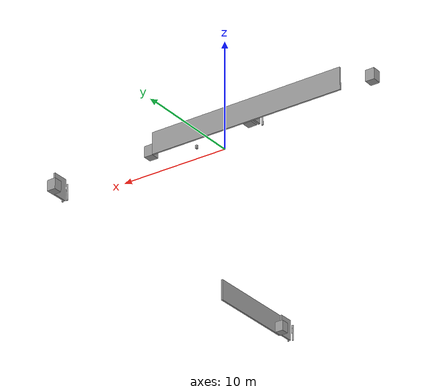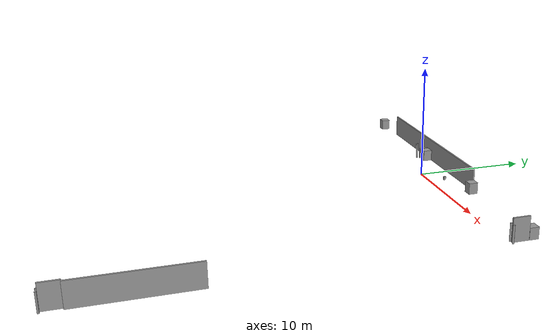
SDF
<?xml version='1.0'?>
<sdf version='1.6'>
  <model name='unit_box_map13'>
    <link name='link_1'>
      <pose frame=''>5.64225 2.27249 0.5 0 -0 0</pose>
      <inertial>
        <mass>1</mass>
        <inertia>
          <ixx>0.166667</ixx>
          <ixy>0</ixy>
          <ixz>0</ixz>
          <iyy>0.166667</iyy>
          <iyz>0</iyz>
          <izz>0.166667</izz>
        </inertia>
        <pose frame=''>0 0 0 0 -0 0</pose>
      </inertial>
      <self_collide>0</self_collide>
      <kinematic>0</kinematic>
      <visual name='visual'>
        <pose frame=''>0 0 0 0 -0 0</pose>
        <geometry>
          <box>
            <size>0.8 0.8 1</size>
          </box>
        </geometry>
        <material>
          <lighting>1</lighting>
          <script>
            <uri>file://media/materials/scripts/gazebo.material</uri>
            <name>Gazebo/Grey</name>
          </script>
          <ambient>0.3 0.3 0.3 1</ambient>
          <diffuse>0.7 0.7 0.7 1</diffuse>
          <specular>0.01 0.01 0.01 1</specular>
          <emissive>0 0 0 1</emissive>
          <shader type='vertex'>
            <normal_map>__default__</normal_map>
          </shader>
        </material>
        <cast_shadows>1</cast_shadows>
        <transparency>0</transparency>
      </visual>
      <collision name='collision'>
        <laser_retro>0</laser_retro>
        <max_contacts>10</max_contacts>
        <pose frame=''>0 0 0 0 -0 0</pose>
        <geometry>
          <box>
            <size>0.8 0.8 1</size>
          </box>
        </geometry>
        <surface>
          <friction>
            <ode>
              <mu>1</mu>
              <mu2>1</mu2>
              <fdir1>0 0 0</fdir1>
              <slip1>0</slip1>
              <slip2>0</slip2>
            </ode>
            <torsional>
              <coefficient>1</coefficient>
              <patch_radius>0</patch_radius>
              <surface_radius>0</surface_radius>
              <use_patch_radius>1</use_patch_radius>
              <ode>
                <slip>0</slip>
              </ode>
            </torsional>
          </friction>
          <bounce>
            <restitution_coefficient>0</restitution_coefficient>
            <threshold>1e+06</threshold>
          </bounce>
          <contact>
            <collide_without_contact>0</collide_without_contact>
            <collide_without_contact_bitmask>1</collide_without_contact_bitmask>
            <collide_bitmask>1</collide_bitmask>
            <ode>
              <soft_cfm>0</soft_cfm>
              <soft_erp>0.2</soft_erp>
              <kp>1e+13</kp>
              <kd>1</kd>
              <max_vel>0.01</max_vel>
              <min_depth>0</min_depth>
            </ode>
            <bullet>
              <split_impulse>1</split_impulse>
              <split_impulse_penetration_threshold>-0.01</split_impulse_penetration_threshold>
              <soft_cfm>0</soft_cfm>
              <soft_erp>0.2</soft_erp>
              <kp>1e+13</kp>
              <kd>1</kd>
            </bullet>
          </contact>
        </surface>
      </collision>
    </link>
    <link name='link_1_clone'>
      <pose frame=''>-3.92858 2.1759 0.5 0 -0 0</pose>
      <inertial>
        <mass>1</mass>
        <inertia>
          <ixx>0.166667</ixx>
          <ixy>0</ixy>
          <ixz>0</ixz>
          <iyy>0.166667</iyy>
          <iyz>0</iyz>
          <izz>0.166667</izz>
        </inertia>
        <pose frame=''>0 0 0 0 -0 0</pose>
      </inertial>
      <self_collide>0</self_collide>
      <kinematic>0</kinematic>
      <visual name='visual'>
        <pose frame=''>0 0 0 0 -0 0</pose>
        <geometry>
          <box>
            <size>0.8 0.8 1</size>
          </box>
        </geometry>
        <material>
          <lighting>1</lighting>
          <script>
            <uri>file://media/materials/scripts/gazebo.material</uri>
            <name>Gazebo/Grey</name>
          </script>
          <ambient>0.3 0.3 0.3 1</ambient>
          <diffuse>0.7 0.7 0.7 1</diffuse>
          <specular>0.01 0.01 0.01 1</specular>
          <emissive>0 0 0 1</emissive>
          <shader type='vertex'>
            <normal_map>__default__</normal_map>
          </shader>
        </material>
        <cast_shadows>1</cast_shadows>
        <transparency>0</transparency>
      </visual>
      <collision name='collision'>
        <laser_retro>0</laser_retro>
        <max_contacts>10</max_contacts>
        <pose frame=''>0 0 0 0 -0 0</pose>
        <geometry>
          <box>
            <size>0.8 0.8 1</size>
          </box>
        </geometry>
        <surface>
          <friction>
            <ode>
              <mu>1</mu>
              <mu2>1</mu2>
              <fdir1>0 0 0</fdir1>
              <slip1>0</slip1>
              <slip2>0</slip2>
            </ode>
            <torsional>
              <coefficient>1</coefficient>
              <patch_radius>0</patch_radius>
              <surface_radius>0</surface_radius>
              <use_patch_radius>1</use_patch_radius>
              <ode>
                <slip>0</slip>
              </ode>
            </torsional>
          </friction>
          <bounce>
            <restitution_coefficient>0</restitution_coefficient>
            <threshold>1e+06</threshold>
          </bounce>
          <contact>
            <collide_without_contact>0</collide_without_contact>
            <collide_without_contact_bitmask>1</collide_without_contact_bitmask>
            <collide_bitmask>1</collide_bitmask>
            <ode>
              <soft_cfm>0</soft_cfm>
              <soft_erp>0.2</soft_erp>
              <kp>1e+13</kp>
              <kd>1</kd>
              <max_vel>0.01</max_vel>
              <min_depth>0</min_depth>
            </ode>
            <bullet>
              <split_impulse>1</split_impulse>
              <split_impulse_penetration_threshold>-0.01</split_impulse_penetration_threshold>
              <soft_cfm>0</soft_cfm>
              <soft_erp>0.2</soft_erp>
              <kp>1e+13</kp>
              <kd>1</kd>
            </bullet>
          </contact>
        </surface>
      </collision>
    </link>
    <link name='link_1_clone_0'>
      <pose frame=''>15.5289 -30.814 0.5 0 -0 0</pose>
      <inertial>
        <mass>1</mass>
        <inertia>
          <ixx>0.166667</ixx>
          <ixy>0</ixy>
          <ixz>0</ixz>
          <iyy>0.166667</iyy>
          <iyz>0</iyz>
          <izz>0.166667</izz>
        </inertia>
        <pose frame=''>0 0 0 0 -0 0</pose>
      </inertial>
      <self_collide>0</self_collide>
      <kinematic>0</kinematic>
      <visual name='visual'>
        <pose frame=''>0 0 0 0 -0 0</pose>
        <geometry>
          <box>
            <size>0.8 0.8 1</size>
          </box>
        </geometry>
        <material>
          <lighting>1</lighting>
          <script>
            <uri>file://media/materials/scripts/gazebo.material</uri>
            <name>Gazebo/Grey</name>
          </script>
          <ambient>0.3 0.3 0.3 1</ambient>
          <diffuse>0.7 0.7 0.7 1</diffuse>
          <specular>0.01 0.01 0.01 1</specular>
          <emissive>0 0 0 1</emissive>
          <shader type='vertex'>
            <normal_map>__default__</normal_map>
          </shader>
        </material>
        <cast_shadows>1</cast_shadows>
        <transparency>0</transparency>
      </visual>
      <collision name='collision'>
        <laser_retro>0</laser_retro>
        <max_contacts>10</max_contacts>
        <pose frame=''>0 0 0 0 -0 0</pose>
        <geometry>
          <box>
            <size>0.8 0.8 1</size>
          </box>
        </geometry>
        <surface>
          <friction>
            <ode>
              <mu>1</mu>
              <mu2>1</mu2>
              <fdir1>0 0 0</fdir1>
              <slip1>0</slip1>
              <slip2>0</slip2>
            </ode>
            <torsional>
              <coefficient>1</coefficient>
              <patch_radius>0</patch_radius>
              <surface_radius>0</surface_radius>
              <use_patch_radius>1</use_patch_radius>
              <ode>
                <slip>0</slip>
              </ode>
            </torsional>
          </friction>
          <bounce>
            <restitution_coefficient>0</restitution_coefficient>
            <threshold>1e+06</threshold>
          </bounce>
          <contact>
            <collide_without_contact>0</collide_without_contact>
            <collide_without_contact_bitmask>1</collide_without_contact_bitmask>
            <collide_bitmask>1</collide_bitmask>
            <ode>
              <soft_cfm>0</soft_cfm>
              <soft_erp>0.2</soft_erp>
              <kp>1e+13</kp>
              <kd>1</kd>
              <max_vel>0.01</max_vel>
              <min_depth>0</min_depth>
            </ode>
            <bullet>
              <split_impulse>1</split_impulse>
              <split_impulse_penetration_threshold>-0.01</split_impulse_penetration_threshold>
              <soft_cfm>0</soft_cfm>
              <soft_erp>0.2</soft_erp>
              <kp>1e+13</kp>
              <kd>1</kd>
            </bullet>
          </contact>
        </surface>
      </collision>
    </link>
    <link name='link_1_clone_0_clone'>
      <pose frame=''>15.5381 2.27815 0.5 0 -0 0</pose>
      <inertial>
        <mass>1</mass>
        <inertia>
          <ixx>0.166667</ixx>
          <ixy>0</ixy>
          <ixz>0</ixz>
          <iyy>0.166667</iyy>
          <iyz>0</iyz>
          <izz>0.166667</izz>
        </inertia>
        <pose frame=''>0 0 0 0 -0 0</pose>
      </inertial>
      <self_collide>0</self_collide>
      <kinematic>0</kinematic>
      <visual name='visual'>
        <pose frame=''>0 0 0 0 -0 0</pose>
        <geometry>
          <box>
            <size>0.8 0.8 1</size>
          </box>
        </geometry>
        <material>
          <lighting>1</lighting>
          <script>
            <uri>file://media/materials/scripts/gazebo.material</uri>
            <name>Gazebo/Grey</name>
          </script>
          <ambient>0.3 0.3 0.3 1</ambient>
          <diffuse>0.7 0.7 0.7 1</diffuse>
          <specular>0.01 0.01 0.01 1</specular>
          <emissive>0 0 0 1</emissive>
          <shader type='vertex'>
            <normal_map>__default__</normal_map>
          </shader>
        </material>
        <cast_shadows>1</cast_shadows>
        <transparency>0</transparency>
      </visual>
      <collision name='collision'>
        <laser_retro>0</laser_retro>
        <max_contacts>10</max_contacts>
        <pose frame=''>0 0 0 0 -0 0</pose>
        <geometry>
          <box>
            <size>0.8 0.8 1</size>
          </box>
        </geometry>
        <surface>
          <friction>
            <ode>
              <mu>1</mu>
              <mu2>1</mu2>
              <fdir1>0 0 0</fdir1>
              <slip1>0</slip1>
              <slip2>0</slip2>
            </ode>
            <torsional>
              <coefficient>1</coefficient>
              <patch_radius>0</patch_radius>
              <surface_radius>0</surface_radius>
              <use_patch_radius>1</use_patch_radius>
              <ode>
                <slip>0</slip>
              </ode>
            </torsional>
          </friction>
          <bounce>
            <restitution_coefficient>0</restitution_coefficient>
            <threshold>1e+06</threshold>
          </bounce>
          <contact>
            <collide_without_contact>0</collide_without_contact>
            <collide_without_contact_bitmask>1</collide_without_contact_bitmask>
            <collide_bitmask>1</collide_bitmask>
            <ode>
              <soft_cfm>0</soft_cfm>
              <soft_erp>0.2</soft_erp>
              <kp>1e+13</kp>
              <kd>1</kd>
              <max_vel>0.01</max_vel>
              <min_depth>0</min_depth>
            </ode>
            <bullet>
              <split_impulse>1</split_impulse>
              <split_impulse_penetration_threshold>-0.01</split_impulse_penetration_threshold>
              <soft_cfm>0</soft_cfm>
              <soft_erp>0.2</soft_erp>
              <kp>1e+13</kp>
              <kd>1</kd>
            </bullet>
          </contact>
        </surface>
      </collision>
    </link>
    <link name='link_1_clone_clone'>
      <pose frame=''>-4.56641 2.17851 0.5 0 -0 0</pose>
      <inertial>
        <mass>0.216254</mass>
        <inertia>
          <ixx>0.0360423</ixx>
          <ixy>0</ixy>
          <ixz>0</ixz>
          <iyy>0.0188639</iyy>
          <iyz>0</iyz>
          <izz>0.0188639</izz>
        </inertia>
        <pose frame=''>0 0 0 0 -0 0</pose>
      </inertial>
      <self_collide>0</self_collide>
      <kinematic>0</kinematic>
      <visual name='visual'>
        <pose frame=''>0 0 0 0 -0 0</pose>
        <geometry>
          <box>
            <size>0.173004 0.8 1</size>
          </box>
        </geometry>
        <material>
          <lighting>1</lighting>
          <script>
            <uri>file://media/materials/scripts/gazebo.material</uri>
            <name>Gazebo/Grey</name>
          </script>
          <ambient>0.3 0.3 0.3 1</ambient>
          <diffuse>0.7 0.7 0.7 1</diffuse>
          <specular>0.01 0.01 0.01 1</specular>
          <emissive>0 0 0 1</emissive>
          <shader type='vertex'>
            <normal_map>__default__</normal_map>
          </shader>
        </material>
        <cast_shadows>1</cast_shadows>
        <transparency>0</transparency>
      </visual>
      <collision name='collision'>
        <laser_retro>0</laser_retro>
        <max_contacts>10</max_contacts>
        <pose frame=''>0 0 0 0 -0 0</pose>
        <geometry>
          <box>
            <size>0.173004 0.8 1</size>
          </box>
        </geometry>
        <surface>
          <friction>
            <ode>
              <mu>1</mu>
              <mu2>1</mu2>
              <fdir1>0 0 0</fdir1>
              <slip1>0</slip1>
              <slip2>0</slip2>
            </ode>
            <torsional>
              <coefficient>1</coefficient>
              <patch_radius>0</patch_radius>
              <surface_radius>0</surface_radius>
              <use_patch_radius>1</use_patch_radius>
              <ode>
                <slip>0</slip>
              </ode>
            </torsional>
          </friction>
          <bounce>
            <restitution_coefficient>0</restitution_coefficient>
            <threshold>1e+06</threshold>
          </bounce>
          <contact>
            <collide_without_contact>0</collide_without_contact>
            <collide_without_contact_bitmask>1</collide_without_contact_bitmask>
            <collide_bitmask>1</collide_bitmask>
            <ode>
              <soft_cfm>0</soft_cfm>
              <soft_erp>0.2</soft_erp>
              <kp>1e+13</kp>
              <kd>1</kd>
              <max_vel>0.01</max_vel>
              <min_depth>0</min_depth>
            </ode>
            <bullet>
              <split_impulse>1</split_impulse>
              <split_impulse_penetration_threshold>-0.01</split_impulse_penetration_threshold>
              <soft_cfm>0</soft_cfm>
              <soft_erp>0.2</soft_erp>
              <kp>1e+13</kp>
              <kd>1</kd>
            </bullet>
          </contact>
        </surface>
      </collision>
    </link>
    <link name='link_1_clone_clone_0'>
      <pose frame=''>-15.389 2.17694 0.5 0 -0 0</pose>
      <inertial>
        <mass>1</mass>
        <inertia>
          <ixx>0.166667</ixx>
          <ixy>0</ixy>
          <ixz>0</ixz>
          <iyy>0.166667</iyy>
          <iyz>0</iyz>
          <izz>0.166667</izz>
        </inertia>
        <pose frame=''>0 0 0 0 -0 0</pose>
      </inertial>
      <self_collide>0</self_collide>
      <kinematic>0</kinematic>
      <visual name='visual'>
        <pose frame=''>0 0 0 0 -0 0</pose>
        <geometry>
          <box>
            <size>0.8 0.8 1</size>
          </box>
        </geometry>
        <material>
          <lighting>1</lighting>
          <script>
            <uri>file://media/materials/scripts/gazebo.material</uri>
            <name>Gazebo/Grey</name>
          </script>
          <ambient>0.3 0.3 0.3 1</ambient>
          <diffuse>0.7 0.7 0.7 1</diffuse>
          <specular>0.01 0.01 0.01 1</specular>
          <emissive>0 0 0 1</emissive>
          <shader type='vertex'>
            <normal_map>__default__</normal_map>
          </shader>
        </material>
        <cast_shadows>1</cast_shadows>
        <transparency>0</transparency>
      </visual>
      <collision name='collision'>
        <laser_retro>0</laser_retro>
        <max_contacts>10</max_contacts>
        <pose frame=''>0 0 0 0 -0 0</pose>
        <geometry>
          <box>
            <size>0.8 0.8 1</size>
          </box>
        </geometry>
        <surface>
          <friction>
            <ode>
              <mu>1</mu>
              <mu2>1</mu2>
              <fdir1>0 0 0</fdir1>
              <slip1>0</slip1>
              <slip2>0</slip2>
            </ode>
            <torsional>
              <coefficient>1</coefficient>
              <patch_radius>0</patch_radius>
              <surface_radius>0</surface_radius>
              <use_patch_radius>1</use_patch_radius>
              <ode>
                <slip>0</slip>
              </ode>
            </torsional>
          </friction>
          <bounce>
            <restitution_coefficient>0</restitution_coefficient>
            <threshold>1e+06</threshold>
          </bounce>
          <contact>
            <collide_without_contact>0</collide_without_contact>
            <collide_without_contact_bitmask>1</collide_without_contact_bitmask>
            <collide_bitmask>1</collide_bitmask>
            <ode>
              <soft_cfm>0</soft_cfm>
              <soft_erp>0.2</soft_erp>
              <kp>1e+13</kp>
              <kd>1</kd>
              <max_vel>0.01</max_vel>
              <min_depth>0</min_depth>
            </ode>
            <bullet>
              <split_impulse>1</split_impulse>
              <split_impulse_penetration_threshold>-0.01</split_impulse_penetration_threshold>
              <soft_cfm>0</soft_cfm>
              <soft_erp>0.2</soft_erp>
              <kp>1e+13</kp>
              <kd>1</kd>
            </bullet>
          </contact>
        </surface>
      </collision>
    </link>
    <link name='link_2'>
      <pose frame=''>-4.67409 1.51565 0.7539 0 -0 0</pose>
      <inertial>
        <mass>1</mass>
        <inertia>
          <ixx>0.145833</ixx>
          <ixy>0</ixy>
          <ixz>0</ixz>
          <iyy>0.145833</iyy>
          <iyz>0</iyz>
          <izz>0.125</izz>
        </inertia>
        <pose frame=''>0 0 0 0 -0 0</pose>
      </inertial>
      <self_collide>0</self_collide>
      <kinematic>0</kinematic>
      <visual name='visual'>
        <pose frame=''>0 0 0 0 -0 0</pose>
        <geometry>
          <cylinder>
            <radius>0.075</radius>
            <length>1.5</length>
          </cylinder>
        </geometry>
        <material>
          <lighting>1</lighting>
          <script>
            <uri>file://media/materials/scripts/gazebo.material</uri>
            <name>Gazebo/Grey</name>
          </script>
          <ambient>0.3 0.3 0.3 1</ambient>
          <diffuse>0.7 0.7 0.7 1</diffuse>
          <specular>0.01 0.01 0.01 1</specular>
          <emissive>0 0 0 1</emissive>
          <shader type='vertex'>
            <normal_map>__default__</normal_map>
          </shader>
        </material>
        <cast_shadows>1</cast_shadows>
        <transparency>0</transparency>
      </visual>
      <collision name='collision'>
        <laser_retro>0</laser_retro>
        <max_contacts>10</max_contacts>
        <pose frame=''>0 0 0 0 -0 0</pose>
        <geometry>
          <cylinder>
            <radius>0.075</radius>
            <length>1.5</length>
          </cylinder>
        </geometry>
        <surface>
          <friction>
            <ode>
              <mu>1</mu>
              <mu2>1</mu2>
              <fdir1>0 0 0</fdir1>
              <slip1>0</slip1>
              <slip2>0</slip2>
            </ode>
            <torsional>
              <coefficient>1</coefficient>
              <patch_radius>0</patch_radius>
              <surface_radius>0</surface_radius>
              <use_patch_radius>1</use_patch_radius>
              <ode>
                <slip>0</slip>
              </ode>
            </torsional>
          </friction>
          <bounce>
            <restitution_coefficient>0</restitution_coefficient>
            <threshold>1e+06</threshold>
          </bounce>
          <contact>
            <collide_without_contact>0</collide_without_contact>
            <collide_without_contact_bitmask>1</collide_without_contact_bitmask>
            <collide_bitmask>1</collide_bitmask>
            <ode>
              <soft_cfm>0</soft_cfm>
              <soft_erp>0.2</soft_erp>
              <kp>1e+13</kp>
              <kd>1</kd>
              <max_vel>0.01</max_vel>
              <min_depth>0</min_depth>
            </ode>
            <bullet>
              <split_impulse>1</split_impulse>
              <split_impulse_penetration_threshold>-0.01</split_impulse_penetration_threshold>
              <soft_cfm>0</soft_cfm>
              <soft_erp>0.2</soft_erp>
              <kp>1e+13</kp>
              <kd>1</kd>
            </bullet>
          </contact>
        </surface>
      </collision>
    </link>
    <link name='link_2_clone'>
      <pose frame=''>16.0775 -32.7288 0.7539 0 -0 0</pose>
      <inertial>
        <mass>1</mass>
        <inertia>
          <ixx>0.145833</ixx>
          <ixy>0</ixy>
          <ixz>0</ixz>
          <iyy>0.145833</iyy>
          <iyz>0</iyz>
          <izz>0.125</izz>
        </inertia>
        <pose frame=''>0 0 0 0 -0 0</pose>
      </inertial>
      <self_collide>0</self_collide>
      <kinematic>0</kinematic>
      <visual name='visual'>
        <pose frame=''>0 0 0 0 -0 0</pose>
        <geometry>
          <cylinder>
            <radius>0.075</radius>
            <length>1.5</length>
          </cylinder>
        </geometry>
        <material>
          <lighting>1</lighting>
          <script>
            <uri>file://media/materials/scripts/gazebo.material</uri>
            <name>Gazebo/Grey</name>
          </script>
          <ambient>0.3 0.3 0.3 1</ambient>
          <diffuse>0.7 0.7 0.7 1</diffuse>
          <specular>0.01 0.01 0.01 1</specular>
          <emissive>0 0 0 1</emissive>
          <shader type='vertex'>
            <normal_map>__default__</normal_map>
          </shader>
        </material>
        <cast_shadows>1</cast_shadows>
        <transparency>0</transparency>
      </visual>
      <collision name='collision'>
        <laser_retro>0</laser_retro>
        <max_contacts>10</max_contacts>
        <pose frame=''>0 0 0 0 -0 0</pose>
        <geometry>
          <cylinder>
            <radius>0.075</radius>
            <length>1.5</length>
          </cylinder>
        </geometry>
        <surface>
          <friction>
            <ode>
              <mu>1</mu>
              <mu2>1</mu2>
              <fdir1>0 0 0</fdir1>
              <slip1>0</slip1>
              <slip2>0</slip2>
            </ode>
            <torsional>
              <coefficient>1</coefficient>
              <patch_radius>0</patch_radius>
              <surface_radius>0</surface_radius>
              <use_patch_radius>1</use_patch_radius>
              <ode>
                <slip>0</slip>
              </ode>
            </torsional>
          </friction>
          <bounce>
            <restitution_coefficient>0</restitution_coefficient>
            <threshold>1e+06</threshold>
          </bounce>
          <contact>
            <collide_without_contact>0</collide_without_contact>
            <collide_without_contact_bitmask>1</collide_without_contact_bitmask>
            <collide_bitmask>1</collide_bitmask>
            <ode>
              <soft_cfm>0</soft_cfm>
              <soft_erp>0.2</soft_erp>
              <kp>1e+13</kp>
              <kd>1</kd>
              <max_vel>0.01</max_vel>
              <min_depth>0</min_depth>
            </ode>
            <bullet>
              <split_impulse>1</split_impulse>
              <split_impulse_penetration_threshold>-0.01</split_impulse_penetration_threshold>
              <soft_cfm>0</soft_cfm>
              <soft_erp>0.2</soft_erp>
              <kp>1e+13</kp>
              <kd>1</kd>
            </bullet>
          </contact>
        </surface>
      </collision>
    </link>
    <link name='link_2_clone_0'>
      <pose frame=''>15.6074 -32.7433 0.7539 0 -0 0</pose>
      <inertial>
        <mass>1</mass>
        <inertia>
          <ixx>0.145833</ixx>
          <ixy>0</ixy>
          <ixz>0</ixz>
          <iyy>0.145833</iyy>
          <iyz>0</iyz>
          <izz>0.125</izz>
        </inertia>
        <pose frame=''>0 0 0 0 -0 0</pose>
      </inertial>
      <self_collide>0</self_collide>
      <kinematic>0</kinematic>
      <visual name='visual'>
        <pose frame=''>0 0 0 0 -0 0</pose>
        <geometry>
          <cylinder>
            <radius>0.075</radius>
            <length>1.5</length>
          </cylinder>
        </geometry>
        <material>
          <lighting>1</lighting>
          <script>
            <uri>file://media/materials/scripts/gazebo.material</uri>
            <name>Gazebo/Grey</name>
          </script>
          <ambient>0.3 0.3 0.3 1</ambient>
          <diffuse>0.7 0.7 0.7 1</diffuse>
          <specular>0.01 0.01 0.01 1</specular>
          <emissive>0 0 0 1</emissive>
          <shader type='vertex'>
            <normal_map>__default__</normal_map>
          </shader>
        </material>
        <cast_shadows>1</cast_shadows>
        <transparency>0</transparency>
      </visual>
      <collision name='collision'>
        <laser_retro>0</laser_retro>
        <max_contacts>10</max_contacts>
        <pose frame=''>0 0 0 0 -0 0</pose>
        <geometry>
          <cylinder>
            <radius>0.075</radius>
            <length>1.5</length>
          </cylinder>
        </geometry>
        <surface>
          <friction>
            <ode>
              <mu>1</mu>
              <mu2>1</mu2>
              <fdir1>0 0 0</fdir1>
              <slip1>0</slip1>
              <slip2>0</slip2>
            </ode>
            <torsional>
              <coefficient>1</coefficient>
              <patch_radius>0</patch_radius>
              <surface_radius>0</surface_radius>
              <use_patch_radius>1</use_patch_radius>
              <ode>
                <slip>0</slip>
              </ode>
            </torsional>
          </friction>
          <bounce>
            <restitution_coefficient>0</restitution_coefficient>
            <threshold>1e+06</threshold>
          </bounce>
          <contact>
            <collide_without_contact>0</collide_without_contact>
            <collide_without_contact_bitmask>1</collide_without_contact_bitmask>
            <collide_bitmask>1</collide_bitmask>
            <ode>
              <soft_cfm>0</soft_cfm>
              <soft_erp>0.2</soft_erp>
              <kp>1e+13</kp>
              <kd>1</kd>
              <max_vel>0.01</max_vel>
              <min_depth>0</min_depth>
            </ode>
            <bullet>
              <split_impulse>1</split_impulse>
              <split_impulse_penetration_threshold>-0.01</split_impulse_penetration_threshold>
              <soft_cfm>0</soft_cfm>
              <soft_erp>0.2</soft_erp>
              <kp>1e+13</kp>
              <kd>1</kd>
            </bullet>
          </contact>
        </surface>
      </collision>
    </link>
    <link name='link_2_clone_clone'>
      <pose frame=''>16.0812 0.409793 0.7539 0 -0 0</pose>
      <inertial>
        <mass>1</mass>
        <inertia>
          <ixx>0.145833</ixx>
          <ixy>0</ixy>
          <ixz>0</ixz>
          <iyy>0.145833</iyy>
          <iyz>0</iyz>
          <izz>0.125</izz>
        </inertia>
        <pose frame=''>0 0 0 0 -0 0</pose>
      </inertial>
      <self_collide>0</self_collide>
      <kinematic>0</kinematic>
      <visual name='visual'>
        <pose frame=''>0 0 0 0 -0 0</pose>
        <geometry>
          <cylinder>
            <radius>0.075</radius>
            <length>1.5</length>
          </cylinder>
        </geometry>
        <material>
          <lighting>1</lighting>
          <script>
            <uri>file://media/materials/scripts/gazebo.material</uri>
            <name>Gazebo/Grey</name>
          </script>
          <ambient>0.3 0.3 0.3 1</ambient>
          <diffuse>0.7 0.7 0.7 1</diffuse>
          <specular>0.01 0.01 0.01 1</specular>
          <emissive>0 0 0 1</emissive>
          <shader type='vertex'>
            <normal_map>__default__</normal_map>
          </shader>
        </material>
        <cast_shadows>1</cast_shadows>
        <transparency>0</transparency>
      </visual>
      <collision name='collision'>
        <laser_retro>0</laser_retro>
        <max_contacts>10</max_contacts>
        <pose frame=''>0 0 0 0 -0 0</pose>
        <geometry>
          <cylinder>
            <radius>0.075</radius>
            <length>1.5</length>
          </cylinder>
        </geometry>
        <surface>
          <friction>
            <ode>
              <mu>1</mu>
              <mu2>1</mu2>
              <fdir1>0 0 0</fdir1>
              <slip1>0</slip1>
              <slip2>0</slip2>
            </ode>
            <torsional>
              <coefficient>1</coefficient>
              <patch_radius>0</patch_radius>
              <surface_radius>0</surface_radius>
              <use_patch_radius>1</use_patch_radius>
              <ode>
                <slip>0</slip>
              </ode>
            </torsional>
          </friction>
          <bounce>
            <restitution_coefficient>0</restitution_coefficient>
            <threshold>1e+06</threshold>
          </bounce>
          <contact>
            <collide_without_contact>0</collide_without_contact>
            <collide_without_contact_bitmask>1</collide_without_contact_bitmask>
            <collide_bitmask>1</collide_bitmask>
            <ode>
              <soft_cfm>0</soft_cfm>
              <soft_erp>0.2</soft_erp>
              <kp>1e+13</kp>
              <kd>1</kd>
              <max_vel>0.01</max_vel>
              <min_depth>0</min_depth>
            </ode>
            <bullet>
              <split_impulse>1</split_impulse>
              <split_impulse_penetration_threshold>-0.01</split_impulse_penetration_threshold>
              <soft_cfm>0</soft_cfm>
              <soft_erp>0.2</soft_erp>
              <kp>1e+13</kp>
              <kd>1</kd>
            </bullet>
          </contact>
        </surface>
      </collision>
    </link>
    <link name='link_2_clone_clone_0'>
      <pose frame=''>15.6338 0.415175 0.7539 0 -0 0</pose>
      <inertial>
        <mass>1</mass>
        <inertia>
          <ixx>0.145833</ixx>
          <ixy>0</ixy>
          <ixz>0</ixz>
          <iyy>0.145833</iyy>
          <iyz>0</iyz>
          <izz>0.125</izz>
        </inertia>
        <pose frame=''>0 0 0 0 -0 0</pose>
      </inertial>
      <self_collide>0</self_collide>
      <kinematic>0</kinematic>
      <visual name='visual'>
        <pose frame=''>0 0 0 0 -0 0</pose>
        <geometry>
          <cylinder>
            <radius>0.075</radius>
            <length>1.5</length>
          </cylinder>
        </geometry>
        <material>
          <lighting>1</lighting>
          <script>
            <uri>file://media/materials/scripts/gazebo.material</uri>
            <name>Gazebo/Grey</name>
          </script>
          <ambient>0.3 0.3 0.3 1</ambient>
          <diffuse>0.7 0.7 0.7 1</diffuse>
          <specular>0.01 0.01 0.01 1</specular>
          <emissive>0 0 0 1</emissive>
          <shader type='vertex'>
            <normal_map>__default__</normal_map>
          </shader>
        </material>
        <cast_shadows>1</cast_shadows>
        <transparency>0</transparency>
      </visual>
      <collision name='collision'>
        <laser_retro>0</laser_retro>
        <max_contacts>10</max_contacts>
        <pose frame=''>0 0 0 0 -0 0</pose>
        <geometry>
          <cylinder>
            <radius>0.075</radius>
            <length>1.5</length>
          </cylinder>
        </geometry>
        <surface>
          <friction>
            <ode>
              <mu>1</mu>
              <mu2>1</mu2>
              <fdir1>0 0 0</fdir1>
              <slip1>0</slip1>
              <slip2>0</slip2>
            </ode>
            <torsional>
              <coefficient>1</coefficient>
              <patch_radius>0</patch_radius>
              <surface_radius>0</surface_radius>
              <use_patch_radius>1</use_patch_radius>
              <ode>
                <slip>0</slip>
              </ode>
            </torsional>
          </friction>
          <bounce>
            <restitution_coefficient>0</restitution_coefficient>
            <threshold>1e+06</threshold>
          </bounce>
          <contact>
            <collide_without_contact>0</collide_without_contact>
            <collide_without_contact_bitmask>1</collide_without_contact_bitmask>
            <collide_bitmask>1</collide_bitmask>
            <ode>
              <soft_cfm>0</soft_cfm>
              <soft_erp>0.2</soft_erp>
              <kp>1e+13</kp>
              <kd>1</kd>
              <max_vel>0.01</max_vel>
              <min_depth>0</min_depth>
            </ode>
            <bullet>
              <split_impulse>1</split_impulse>
              <split_impulse_penetration_threshold>-0.01</split_impulse_penetration_threshold>
              <soft_cfm>0</soft_cfm>
              <soft_erp>0.2</soft_erp>
              <kp>1e+13</kp>
              <kd>1</kd>
            </bullet>
          </contact>
        </surface>
      </collision>
    </link>
    <link name='link_clone'>
      <pose frame=''>-3.76019 2.65371 0.997263 0 -0 0</pose>
      <inertial>
        <mass>1</mass>
        <inertia>
          <ixx>0.166667</ixx>
          <ixy>0</ixy>
          <ixz>0</ixz>
          <iyy>0.166667</iyy>
          <iyz>0</iyz>
          <izz>0.166667</izz>
        </inertia>
        <pose frame=''>0 0 0 0 -0 0</pose>
      </inertial>
      <self_collide>0</self_collide>
      <kinematic>0</kinematic>
      <visual name='visual'>
        <geometry>
          <box>
            <size>18 0.15 2</size>
          </box>
        </geometry>
        <material>
          <script>
            <name>Gazebo/Grey</name>
            <uri>file://media/materials/scripts/gazebo.material</uri>
          </script>
          <ambient>0.3 0.3 0.3 1</ambient>
          <diffuse>0.7 0.7 0.7 1</diffuse>
          <specular>0.01 0.01 0.01 1</specular>
          <emissive>0 0 0 1</emissive>
          <shader type='vertex'>
            <normal_map>__default__</normal_map>
          </shader>
        </material>
        <pose frame=''>0 0 0 0 -0 0</pose>
        <cast_shadows>1</cast_shadows>
        <transparency>0</transparency>
      </visual>
      <collision name='collision'>
        <laser_retro>0</laser_retro>
        <max_contacts>10</max_contacts>
        <pose frame=''>0 0 0 0 -0 0</pose>
        <geometry>
          <box>
            <size>18 0.15 2</size>
          </box>
        </geometry>
        <surface>
          <friction>
            <ode>
              <mu>1</mu>
              <mu2>1</mu2>
              <fdir1>0 0 0</fdir1>
              <slip1>0</slip1>
              <slip2>0</slip2>
            </ode>
            <torsional>
              <coefficient>1</coefficient>
              <patch_radius>0</patch_radius>
              <surface_radius>0</surface_radius>
              <use_patch_radius>1</use_patch_radius>
              <ode>
                <slip>0</slip>
              </ode>
            </torsional>
          </friction>
          <bounce>
            <restitution_coefficient>0</restitution_coefficient>
            <threshold>1e+06</threshold>
          </bounce>
          <contact>
            <collide_without_contact>0</collide_without_contact>
            <collide_without_contact_bitmask>1</collide_without_contact_bitmask>
            <collide_bitmask>1</collide_bitmask>
            <ode>
              <soft_cfm>0</soft_cfm>
              <soft_erp>0.2</soft_erp>
              <kp>1e+13</kp>
              <kd>1</kd>
              <max_vel>0.01</max_vel>
              <min_depth>0</min_depth>
            </ode>
            <bullet>
              <split_impulse>1</split_impulse>
              <split_impulse_penetration_threshold>-0.01</split_impulse_penetration_threshold>
              <soft_cfm>0</soft_cfm>
              <soft_erp>0.2</soft_erp>
              <kp>1e+13</kp>
              <kd>1</kd>
            </bullet>
          </contact>
        </surface>
      </collision>
    </link>
    <link name='link_clone_0_clone'>
      <pose frame=''>1.60516 1.62127 0 0 -0 1.5707</pose>
      <inertial>
        <mass>1</mass>
        <inertia>
          <ixx>0.166667</ixx>
          <ixy>0</ixy>
          <ixz>0</ixz>
          <iyy>0.166667</iyy>
          <iyz>0</iyz>
          <izz>0.166667</izz>
        </inertia>
        <pose frame=''>0 0 0 0 -0 0</pose>
      </inertial>
      <self_collide>0</self_collide>
      <kinematic>0</kinematic>
      <visual name='visual'>
        <geometry>
          <box>
            <size>0.2 0.15 0.3</size>
          </box>
        </geometry>
        <material>
          <script>
            <name>Gazebo/Grey</name>
            <uri>file://media/materials/scripts/gazebo.material</uri>
          </script>
          <ambient>0.3 0.3 0.3 1</ambient>
          <diffuse>0.7 0.7 0.7 1</diffuse>
          <specular>0.01 0.01 0.01 1</specular>
          <emissive>0 0 0 1</emissive>
          <shader type='vertex'>
            <normal_map>__default__</normal_map>
          </shader>
        </material>
        <pose frame=''>0 0 0 0 -0 0</pose>
        <cast_shadows>1</cast_shadows>
        <transparency>0</transparency>
      </visual>
      <collision name='collision'>
        <laser_retro>0</laser_retro>
        <max_contacts>10</max_contacts>
        <pose frame=''>0 0 0 0 -0 0</pose>
        <geometry>
          <box>
            <size>0.2 0.15 0.3</size>
          </box>
        </geometry>
        <surface>
          <friction>
            <ode>
              <mu>1</mu>
              <mu2>1</mu2>
              <fdir1>0 0 0</fdir1>
              <slip1>0</slip1>
              <slip2>0</slip2>
            </ode>
            <torsional>
              <coefficient>1</coefficient>
              <patch_radius>0</patch_radius>
              <surface_radius>0</surface_radius>
              <use_patch_radius>1</use_patch_radius>
              <ode>
                <slip>0</slip>
              </ode>
            </torsional>
          </friction>
          <bounce>
            <restitution_coefficient>0</restitution_coefficient>
            <threshold>1e+06</threshold>
          </bounce>
          <contact>
            <collide_without_contact>0</collide_without_contact>
            <collide_without_contact_bitmask>1</collide_without_contact_bitmask>
            <collide_bitmask>1</collide_bitmask>
            <ode>
              <soft_cfm>0</soft_cfm>
              <soft_erp>0.2</soft_erp>
              <kp>1e+13</kp>
              <kd>1</kd>
              <max_vel>0.01</max_vel>
              <min_depth>0</min_depth>
            </ode>
            <bullet>
              <split_impulse>1</split_impulse>
              <split_impulse_penetration_threshold>-0.01</split_impulse_penetration_threshold>
              <soft_cfm>0</soft_cfm>
              <soft_erp>0.2</soft_erp>
              <kp>1e+13</kp>
              <kd>1</kd>
            </bullet>
          </contact>
        </surface>
      </collision>
    </link>
    <link name='link_clone_0_clone_clone_0'>
      <pose frame=''>15.8605 1.14267 1.00786 0 -0 1.5707</pose>
      <inertial>
        <mass>1</mass>
        <inertia>
          <ixx>0.166667</ixx>
          <ixy>0</ixy>
          <ixz>0</ixz>
          <iyy>0.166667</iyy>
          <iyz>0</iyz>
          <izz>0.166667</izz>
        </inertia>
        <pose frame=''>0 0 0 0 -0 0</pose>
      </inertial>
      <self_collide>0</self_collide>
      <kinematic>0</kinematic>
      <visual name='visual'>
        <geometry>
          <box>
            <size>1.45 0.15 2</size>
          </box>
        </geometry>
        <material>
          <script>
            <name>Gazebo/Grey</name>
            <uri>file://media/materials/scripts/gazebo.material</uri>
          </script>
          <ambient>0.3 0.3 0.3 1</ambient>
          <diffuse>0.7 0.7 0.7 1</diffuse>
          <specular>0.01 0.01 0.01 1</specular>
          <emissive>0 0 0 1</emissive>
          <shader type='vertex'>
            <normal_map>__default__</normal_map>
          </shader>
        </material>
        <pose frame=''>0 0 0 0 -0 0</pose>
        <cast_shadows>1</cast_shadows>
        <transparency>0</transparency>
      </visual>
      <collision name='collision'>
        <laser_retro>0</laser_retro>
        <max_contacts>10</max_contacts>
        <pose frame=''>0 0 0 0 -0 0</pose>
        <geometry>
          <box>
            <size>1.45 0.15 2</size>
          </box>
        </geometry>
        <surface>
          <friction>
            <ode>
              <mu>1</mu>
              <mu2>1</mu2>
              <fdir1>0 0 0</fdir1>
              <slip1>0</slip1>
              <slip2>0</slip2>
            </ode>
            <torsional>
              <coefficient>1</coefficient>
              <patch_radius>0</patch_radius>
              <surface_radius>0</surface_radius>
              <use_patch_radius>1</use_patch_radius>
              <ode>
                <slip>0</slip>
              </ode>
            </torsional>
          </friction>
          <bounce>
            <restitution_coefficient>0</restitution_coefficient>
            <threshold>1e+06</threshold>
          </bounce>
          <contact>
            <collide_without_contact>0</collide_without_contact>
            <collide_without_contact_bitmask>1</collide_without_contact_bitmask>
            <collide_bitmask>1</collide_bitmask>
            <ode>
              <soft_cfm>0</soft_cfm>
              <soft_erp>0.2</soft_erp>
              <kp>1e+13</kp>
              <kd>1</kd>
              <max_vel>0.01</max_vel>
              <min_depth>0</min_depth>
            </ode>
            <bullet>
              <split_impulse>1</split_impulse>
              <split_impulse_penetration_threshold>-0.01</split_impulse_penetration_threshold>
              <soft_cfm>0</soft_cfm>
              <soft_erp>0.2</soft_erp>
              <kp>1e+13</kp>
              <kd>1</kd>
            </bullet>
          </contact>
        </surface>
      </collision>
    </link>
    <link name='link_clone_0_clone_clone_0_clone_0'>
      <pose frame=''>15.8475 -31.9455 1.00786 0 -0 1.5707</pose>
      <inertial>
        <mass>1</mass>
        <inertia>
          <ixx>0.166667</ixx>
          <ixy>0</ixy>
          <ixz>0</ixz>
          <iyy>0.166667</iyy>
          <iyz>0</iyz>
          <izz>0.166667</izz>
        </inertia>
        <pose frame=''>0 0 0 0 -0 0</pose>
      </inertial>
      <self_collide>0</self_collide>
      <kinematic>0</kinematic>
      <visual name='visual'>
        <geometry>
          <box>
            <size>1.45 0.15 2</size>
          </box>
        </geometry>
        <material>
          <script>
            <name>Gazebo/Grey</name>
            <uri>file://media/materials/scripts/gazebo.material</uri>
          </script>
          <ambient>0.3 0.3 0.3 1</ambient>
          <diffuse>0.7 0.7 0.7 1</diffuse>
          <specular>0.01 0.01 0.01 1</specular>
          <emissive>0 0 0 1</emissive>
          <shader type='vertex'>
            <normal_map>__default__</normal_map>
          </shader>
        </material>
        <pose frame=''>0 0 0 0 -0 0</pose>
        <cast_shadows>1</cast_shadows>
        <transparency>0</transparency>
      </visual>
      <collision name='collision'>
        <laser_retro>0</laser_retro>
        <max_contacts>10</max_contacts>
        <pose frame=''>0 0 0 0 -0 0</pose>
        <geometry>
          <box>
            <size>1.45 0.15 2</size>
          </box>
        </geometry>
        <surface>
          <friction>
            <ode>
              <mu>1</mu>
              <mu2>1</mu2>
              <fdir1>0 0 0</fdir1>
              <slip1>0</slip1>
              <slip2>0</slip2>
            </ode>
            <torsional>
              <coefficient>1</coefficient>
              <patch_radius>0</patch_radius>
              <surface_radius>0</surface_radius>
              <use_patch_radius>1</use_patch_radius>
              <ode>
                <slip>0</slip>
              </ode>
            </torsional>
          </friction>
          <bounce>
            <restitution_coefficient>0</restitution_coefficient>
            <threshold>1e+06</threshold>
          </bounce>
          <contact>
            <collide_without_contact>0</collide_without_contact>
            <collide_without_contact_bitmask>1</collide_without_contact_bitmask>
            <collide_bitmask>1</collide_bitmask>
            <ode>
              <soft_cfm>0</soft_cfm>
              <soft_erp>0.2</soft_erp>
              <kp>1e+13</kp>
              <kd>1</kd>
              <max_vel>0.01</max_vel>
              <min_depth>0</min_depth>
            </ode>
            <bullet>
              <split_impulse>1</split_impulse>
              <split_impulse_penetration_threshold>-0.01</split_impulse_penetration_threshold>
              <soft_cfm>0</soft_cfm>
              <soft_erp>0.2</soft_erp>
              <kp>1e+13</kp>
              <kd>1</kd>
            </bullet>
          </contact>
        </surface>
      </collision>
    </link>
    <link name='link_clone_0_clone_clone_0_clone_clone_0_clone'>
      <pose frame=''>16.0076 -26.735 0.995408 0 -0 1.5707</pose>
      <inertial>
        <mass>3.86965</mass>
        <inertia>
          <ixx>0.644944</ixx>
          <ixy>0</ixy>
          <ixz>0</ixz>
          <iyy>5.15123</iyy>
          <iyz>0</iyz>
          <izz>5.15123</izz>
        </inertia>
        <pose frame=''>0 0 0 0 -0 0</pose>
      </inertial>
      <self_collide>0</self_collide>
      <kinematic>0</kinematic>
      <visual name='visual'>
        <geometry>
          <box>
            <size>9.0163 0.15 2</size>
          </box>
        </geometry>
        <material>
          <script>
            <name>Gazebo/Grey</name>
            <uri>file://media/materials/scripts/gazebo.material</uri>
          </script>
          <ambient>0.3 0.3 0.3 1</ambient>
          <diffuse>0.7 0.7 0.7 1</diffuse>
          <specular>0.01 0.01 0.01 1</specular>
          <emissive>0 0 0 1</emissive>
          <shader type='vertex'>
            <normal_map>__default__</normal_map>
          </shader>
        </material>
        <pose frame=''>0 0 0 0 -0 0</pose>
        <cast_shadows>1</cast_shadows>
        <transparency>0</transparency>
      </visual>
      <collision name='collision'>
        <laser_retro>0</laser_retro>
        <max_contacts>10</max_contacts>
        <pose frame=''>0 0 0 0 -0 0</pose>
        <geometry>
          <box>
            <size>9.0163 0.15 2</size>
          </box>
        </geometry>
        <surface>
          <friction>
            <ode>
              <mu>1</mu>
              <mu2>1</mu2>
              <fdir1>0 0 0</fdir1>
              <slip1>0</slip1>
              <slip2>0</slip2>
            </ode>
            <torsional>
              <coefficient>1</coefficient>
              <patch_radius>0</patch_radius>
              <surface_radius>0</surface_radius>
              <use_patch_radius>1</use_patch_radius>
              <ode>
                <slip>0</slip>
              </ode>
            </torsional>
          </friction>
          <bounce>
            <restitution_coefficient>0</restitution_coefficient>
            <threshold>1e+06</threshold>
          </bounce>
          <contact>
            <collide_without_contact>0</collide_without_contact>
            <collide_without_contact_bitmask>1</collide_without_contact_bitmask>
            <collide_bitmask>1</collide_bitmask>
            <ode>
              <soft_cfm>0</soft_cfm>
              <soft_erp>0.2</soft_erp>
              <kp>1e+13</kp>
              <kd>1</kd>
              <max_vel>0.01</max_vel>
              <min_depth>0</min_depth>
            </ode>
            <bullet>
              <split_impulse>1</split_impulse>
              <split_impulse_penetration_threshold>-0.01</split_impulse_penetration_threshold>
              <soft_cfm>0</soft_cfm>
              <soft_erp>0.2</soft_erp>
              <kp>1e+13</kp>
              <kd>1</kd>
            </bullet>
          </contact>
        </surface>
      </collision>
    </link>
    <static>1</static>
    <allow_auto_disable>0</allow_auto_disable>
  </model>
</sdf>
